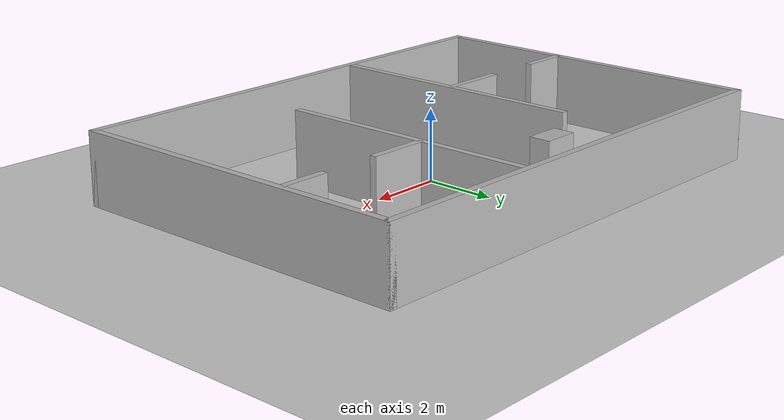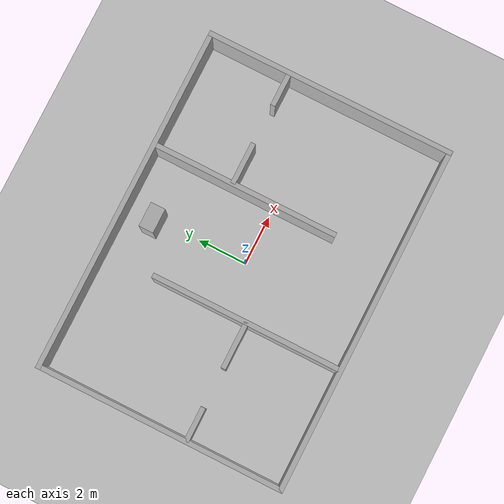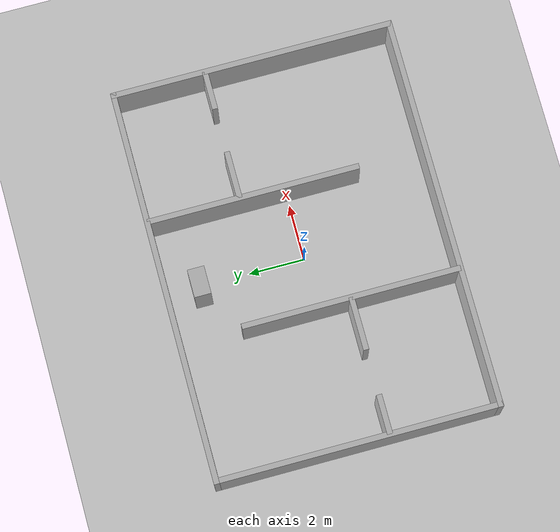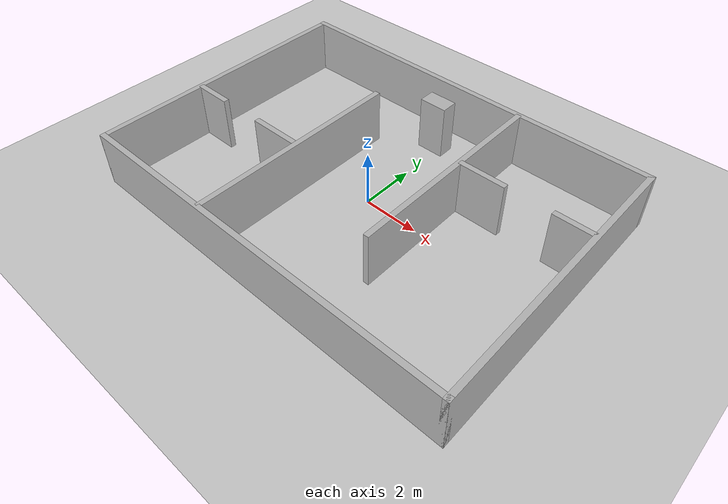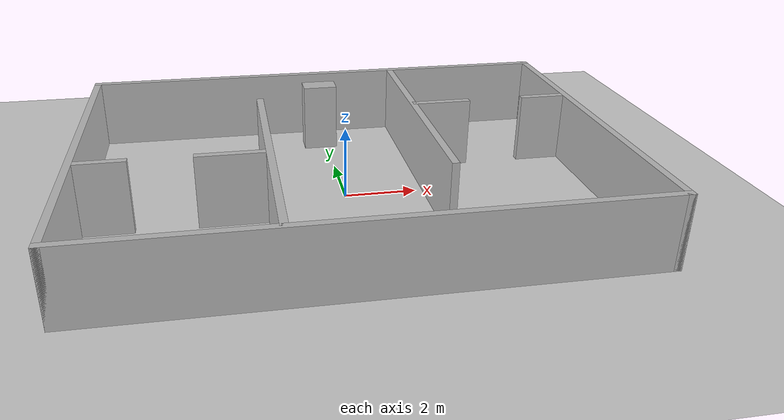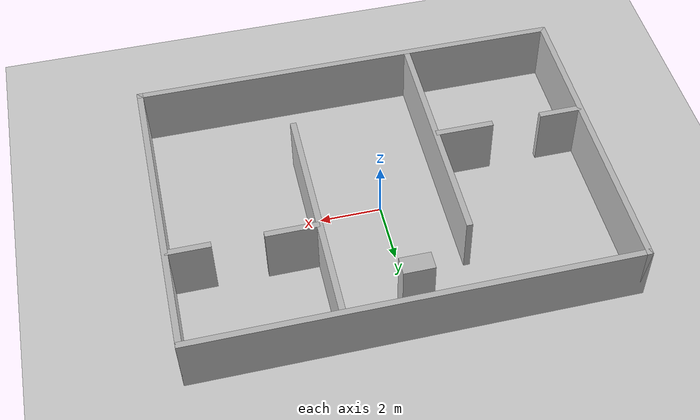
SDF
<sdf version='1.7'>
  <world name='mr3_confirmation_corridors'>
    <!-- mr3_box_layouts_v1; layout_seed=1102; eval-only. -->
    <plugin name='gazebo_ros_state' filename='libgazebo_ros_state.so'>
      <ros><namespace>/gazebo</namespace></ros><update_rate>10.0</update_rate>
    </plugin>
    <include><uri>model://sun</uri></include>
    <include><uri>model://ground_plane</uri></include>
    <gravity>0 0 -9.8</gravity><physics type='ode'>
      <max_step_size>0.001</max_step_size><real_time_factor>1</real_time_factor>
      <real_time_update_rate>1000</real_time_update_rate></physics>
    <model name='task_geometry'><static>true</static><link name='boxes'>
      <collision name='north'><pose>0.000000 5.000000 1 0 0 0.000000</pose>
        <geometry><box><size>14.200000 0.200000 2</size></box></geometry></collision>
      <visual name='north_visual'><pose>0.000000 5.000000 1 0 0 0.000000</pose>
        <geometry><box><size>14.200000 0.200000 2</size></box></geometry></visual>
      <collision name='south'><pose>0.000000 -5.000000 1 0 0 0.000000</pose>
        <geometry><box><size>14.200000 0.200000 2</size></box></geometry></collision>
      <visual name='south_visual'><pose>0.000000 -5.000000 1 0 0 0.000000</pose>
        <geometry><box><size>14.200000 0.200000 2</size></box></geometry></visual>
      <collision name='east'><pose>7.000000 0.000000 1 0 0 0.000000</pose>
        <geometry><box><size>0.200000 10.200000 2</size></box></geometry></collision>
      <visual name='east_visual'><pose>7.000000 0.000000 1 0 0 0.000000</pose>
        <geometry><box><size>0.200000 10.200000 2</size></box></geometry></visual>
      <collision name='west'><pose>-7.000000 0.000000 1 0 0 0.000000</pose>
        <geometry><box><size>0.200000 10.200000 2</size></box></geometry></collision>
      <visual name='west_visual'><pose>-7.000000 0.000000 1 0 0 0.000000</pose>
        <geometry><box><size>0.200000 10.200000 2</size></box></geometry></visual>
      <collision name='left_spine'><pose>-2.100000 -1.100000 1 0 0 0.000000</pose>
        <geometry><box><size>0.200000 7.800000 2</size></box></geometry></collision>
      <visual name='left_spine_visual'><pose>-2.100000 -1.100000 1 0 0 0.000000</pose>
        <geometry><box><size>0.200000 7.800000 2</size></box></geometry></visual>
      <collision name='right_spine'><pose>2.300000 1.200000 1 0 0 0.000000</pose>
        <geometry><box><size>0.200000 7.600000 2</size></box></geometry></collision>
      <visual name='right_spine_visual'><pose>2.300000 1.200000 1 0 0 0.000000</pose>
        <geometry><box><size>0.200000 7.600000 2</size></box></geometry></visual>
      <collision name='left_branch_west'><pose>-6.300000 -1.100000 1 0 0 0.000000</pose>
        <geometry><box><size>1.400000 0.200000 2</size></box></geometry></collision>
      <visual name='left_branch_west_visual'><pose>-6.300000 -1.100000 1 0 0 0.000000</pose>
        <geometry><box><size>1.400000 0.200000 2</size></box></geometry></visual>
      <collision name='left_branch_east'><pose>-3.050000 -1.100000 1 0 0 0.000000</pose>
        <geometry><box><size>1.900000 0.200000 2</size></box></geometry></collision>
      <visual name='left_branch_east_visual'><pose>-3.050000 -1.100000 1 0 0 0.000000</pose>
        <geometry><box><size>1.900000 0.200000 2</size></box></geometry></visual>
      <collision name='right_branch_west'><pose>3.150000 1.700000 1 0 0 0.000000</pose>
        <geometry><box><size>1.700000 0.200000 2</size></box></geometry></collision>
      <visual name='right_branch_west_visual'><pose>3.150000 1.700000 1 0 0 0.000000</pose>
        <geometry><box><size>1.700000 0.200000 2</size></box></geometry></visual>
      <collision name='right_branch_east'><pose>6.300000 1.700000 1 0 0 0.000000</pose>
        <geometry><box><size>1.400000 0.200000 2</size></box></geometry></collision>
      <visual name='right_branch_east_visual'><pose>6.300000 1.700000 1 0 0 0.000000</pose>
        <geometry><box><size>1.400000 0.200000 2</size></box></geometry></visual>
      <collision name='central_cabinet'><pose>-0.200000 3.800000 1 0 0 0.000000</pose>
        <geometry><box><size>1.000000 0.600000 2</size></box></geometry></collision>
      <visual name='central_cabinet_visual'><pose>-0.200000 3.800000 1 0 0 0.000000</pose>
        <geometry><box><size>1.000000 0.600000 2</size></box></geometry></visual>
    </link></model>
  </world>
</sdf>
